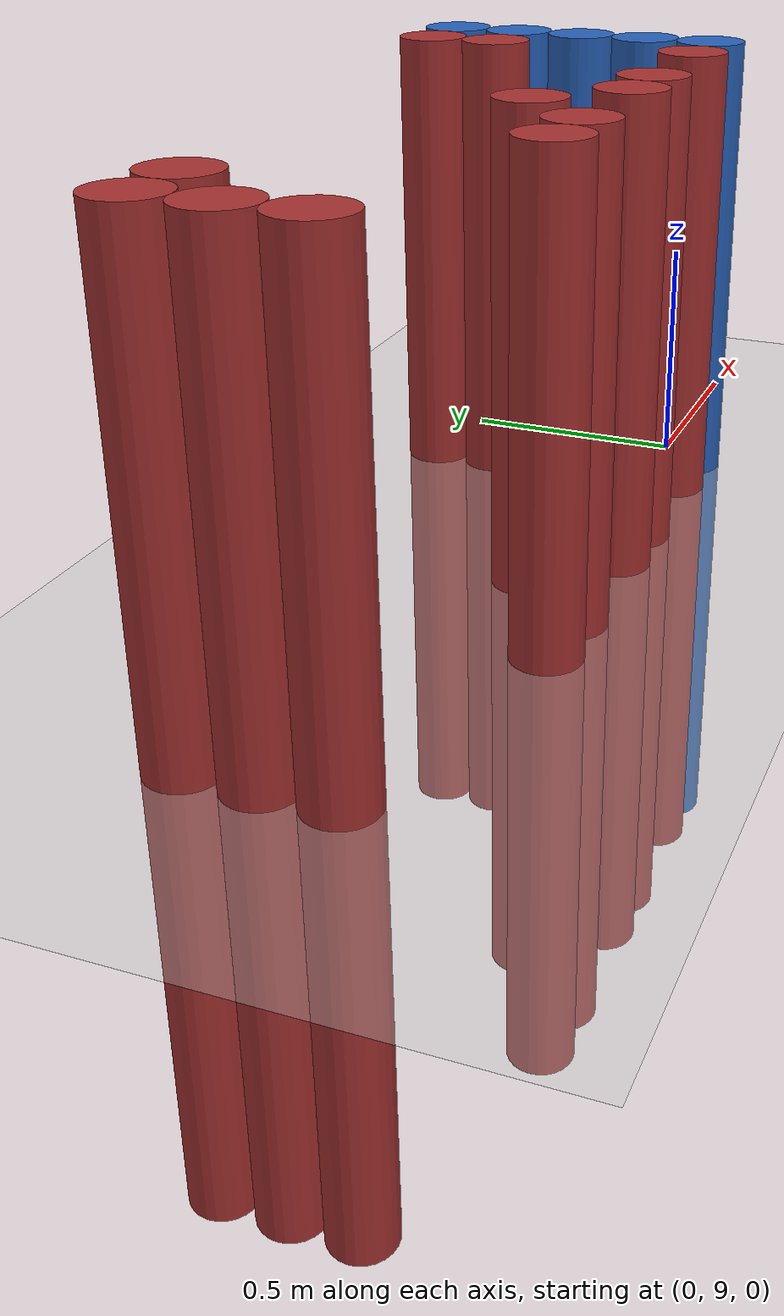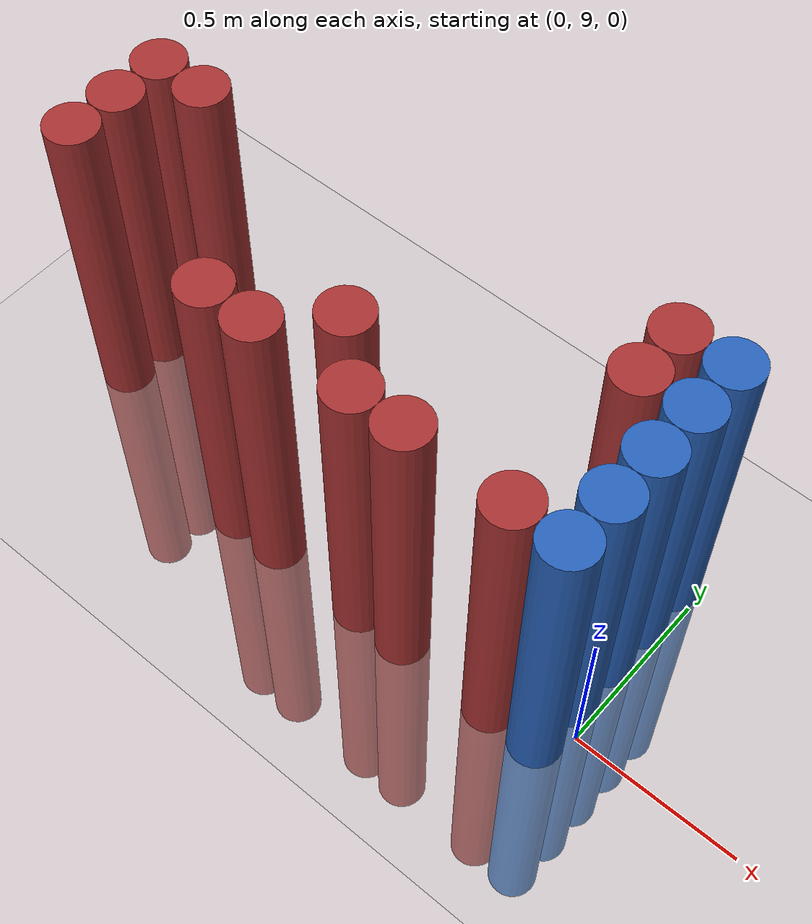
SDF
<sdf version="1.6">
 <world name="default">
  <model name="ground_plane">
   <static>1</static>
   <link name="link">
    <collision name="collision">
     <geometry><plane><normal>0 0 1</normal><size>100 100</size></plane></geometry>
     <surface><friction><ode><mu>100</mu><mu2>50</mu2></ode></friction></surface>
    </collision>
    <visual name="visual">
     <cast_shadows>0</cast_shadows>
     <geometry><plane><normal>0 0 1</normal><size>100 100</size></plane></geometry>
     <material>
      <script><uri>file://media/materials/scripts/gazebo.material</uri><name>Gazebo/Grey</name></script>
     </material>
    </visual>
   </link>
  </model>
  <model name="unit_cylinder_185">
   <static>1</static>
   <pose>-1.725000 9.075000 0.000000 0.000000 0.000000 0.000000</pose>
   <link name="link">
    <inertial>
     <mass>1</mass>
     <inertia><ixx>0.145833</ixx><ixy>0</ixy><ixz>0</ixz><iyy>0.145833</iyy><iyz>0</iyz><izz>0.125</izz></inertia>
    </inertial>
    <collision name="collision">
     <geometry><cylinder><radius>0.075000</radius><length>2</length></cylinder></geometry>
    </collision>
    <visual name="visual">
     <geometry><cylinder><radius>0.075000</radius><length>2</length></cylinder></geometry>
     <material>
      <ambient>0.648000 0.192000 0.192000 1</ambient>
      <diffuse>0.648000 0.192000 0.192000 1</diffuse>
     </material>
     <material>
      <script><name>Gazebo/Grey</name><uri>file://media/materials/scripts/gazebo.material</uri></script>
     </material>
    </visual>
   </link>
  </model>
  <model name="unit_cylinder_186">
   <static>1</static>
   <pose>-1.725000 9.225000 0.000000 0.000000 0.000000 0.000000</pose>
   <link name="link">
    <inertial>
     <mass>1</mass>
     <inertia><ixx>0.145833</ixx><ixy>0</ixy><ixz>0</ixz><iyy>0.145833</iyy><iyz>0</iyz><izz>0.125</izz></inertia>
    </inertial>
    <collision name="collision">
     <geometry><cylinder><radius>0.075000</radius><length>2</length></cylinder></geometry>
    </collision>
    <visual name="visual">
     <geometry><cylinder><radius>0.075000</radius><length>2</length></cylinder></geometry>
     <material>
      <ambient>0.648000 0.192000 0.192000 1</ambient>
      <diffuse>0.648000 0.192000 0.192000 1</diffuse>
     </material>
     <material>
      <script><name>Gazebo/Grey</name><uri>file://media/materials/scripts/gazebo.material</uri></script>
     </material>
    </visual>
   </link>
  </model>
  <model name="unit_cylinder_187">
   <static>1</static>
   <pose>-1.725000 9.375000 0.000000 0.000000 0.000000 0.000000</pose>
   <link name="link">
    <inertial>
     <mass>1</mass>
     <inertia><ixx>0.145833</ixx><ixy>0</ixy><ixz>0</ixz><iyy>0.145833</iyy><iyz>0</iyz><izz>0.125</izz></inertia>
    </inertial>
    <collision name="collision">
     <geometry><cylinder><radius>0.075000</radius><length>2</length></cylinder></geometry>
    </collision>
    <visual name="visual">
     <geometry><cylinder><radius>0.075000</radius><length>2</length></cylinder></geometry>
     <material>
      <ambient>0.648000 0.192000 0.192000 1</ambient>
      <diffuse>0.648000 0.192000 0.192000 1</diffuse>
     </material>
     <material>
      <script><name>Gazebo/Grey</name><uri>file://media/materials/scripts/gazebo.material</uri></script>
     </material>
    </visual>
   </link>
  </model>
  <model name="unit_cylinder_189">
   <static>1</static>
   <pose>-1.575000 9.375000 0.000000 0.000000 0.000000 0.000000</pose>
   <link name="link">
    <inertial>
     <mass>1</mass>
     <inertia><ixx>0.145833</ixx><ixy>0</ixy><ixz>0</ixz><iyy>0.145833</iyy><iyz>0</iyz><izz>0.125</izz></inertia>
    </inertial>
    <collision name="collision">
     <geometry><cylinder><radius>0.075000</radius><length>2</length></cylinder></geometry>
    </collision>
    <visual name="visual">
     <geometry><cylinder><radius>0.075000</radius><length>2</length></cylinder></geometry>
     <material>
      <ambient>0.648000 0.192000 0.192000 1</ambient>
      <diffuse>0.648000 0.192000 0.192000 1</diffuse>
     </material>
     <material>
      <script><name>Gazebo/Grey</name><uri>file://media/materials/scripts/gazebo.material</uri></script>
     </material>
    </visual>
   </link>
  </model>
  <model name="unit_cylinder_199">
   <static>1</static>
   <pose>-1.125000 8.925000 0.000000 0.000000 0.000000 0.000000</pose>
   <link name="link">
    <inertial>
     <mass>1</mass>
     <inertia><ixx>0.145833</ixx><ixy>0</ixy><ixz>0</ixz><iyy>0.145833</iyy><iyz>0</iyz><izz>0.125</izz></inertia>
    </inertial>
    <collision name="collision">
     <geometry><cylinder><radius>0.075000</radius><length>2</length></cylinder></geometry>
    </collision>
    <visual name="visual">
     <geometry><cylinder><radius>0.075000</radius><length>2</length></cylinder></geometry>
     <material>
      <ambient>0.648000 0.192000 0.192000 1</ambient>
      <diffuse>0.648000 0.192000 0.192000 1</diffuse>
     </material>
     <material>
      <script><name>Gazebo/Grey</name><uri>file://media/materials/scripts/gazebo.material</uri></script>
     </material>
    </visual>
   </link>
  </model>
  <model name="unit_cylinder_200">
   <static>1</static>
   <pose>-0.975000 8.925000 0.000000 0.000000 0.000000 0.000000</pose>
   <link name="link">
    <inertial>
     <mass>1</mass>
     <inertia><ixx>0.145833</ixx><ixy>0</ixy><ixz>0</ixz><iyy>0.145833</iyy><iyz>0</iyz><izz>0.125</izz></inertia>
    </inertial>
    <collision name="collision">
     <geometry><cylinder><radius>0.075000</radius><length>2</length></cylinder></geometry>
    </collision>
    <visual name="visual">
     <geometry><cylinder><radius>0.075000</radius><length>2</length></cylinder></geometry>
     <material>
      <ambient>0.648000 0.192000 0.192000 1</ambient>
      <diffuse>0.648000 0.192000 0.192000 1</diffuse>
     </material>
     <material>
      <script><name>Gazebo/Grey</name><uri>file://media/materials/scripts/gazebo.material</uri></script>
     </material>
    </visual>
   </link>
  </model>
  <model name="unit_cylinder_201">
   <static>1</static>
   <pose>-0.825000 9.075000 0.000000 0.000000 0.000000 0.000000</pose>
   <link name="link">
    <inertial>
     <mass>1</mass>
     <inertia><ixx>0.145833</ixx><ixy>0</ixy><ixz>0</ixz><iyy>0.145833</iyy><iyz>0</iyz><izz>0.125</izz></inertia>
    </inertial>
    <collision name="collision">
     <geometry><cylinder><radius>0.075000</radius><length>2</length></cylinder></geometry>
    </collision>
    <visual name="visual">
     <geometry><cylinder><radius>0.075000</radius><length>2</length></cylinder></geometry>
     <material>
      <ambient>0.648000 0.192000 0.192000 1</ambient>
      <diffuse>0.648000 0.192000 0.192000 1</diffuse>
     </material>
     <material>
      <script><name>Gazebo/Grey</name><uri>file://media/materials/scripts/gazebo.material</uri></script>
     </material>
    </visual>
   </link>
  </model>
  <model name="unit_cylinder_205">
   <static>1</static>
   <pose>-0.675000 8.925000 0.000000 0.000000 0.000000 0.000000</pose>
   <link name="link">
    <inertial>
     <mass>1</mass>
     <inertia><ixx>0.145833</ixx><ixy>0</ixy><ixz>0</ixz><iyy>0.145833</iyy><iyz>0</iyz><izz>0.125</izz></inertia>
    </inertial>
    <collision name="collision">
     <geometry><cylinder><radius>0.075000</radius><length>2</length></cylinder></geometry>
    </collision>
    <visual name="visual">
     <geometry><cylinder><radius>0.075000</radius><length>2</length></cylinder></geometry>
     <material>
      <ambient>0.648000 0.192000 0.192000 1</ambient>
      <diffuse>0.648000 0.192000 0.192000 1</diffuse>
     </material>
     <material>
      <script><name>Gazebo/Grey</name><uri>file://media/materials/scripts/gazebo.material</uri></script>
     </material>
    </visual>
   </link>
  </model>
  <model name="unit_cylinder_211">
   <static>1</static>
   <pose>-0.525000 8.925000 0.000000 0.000000 0.000000 0.000000</pose>
   <link name="link">
    <inertial>
     <mass>1</mass>
     <inertia><ixx>0.145833</ixx><ixy>0</ixy><ixz>0</ixz><iyy>0.145833</iyy><iyz>0</iyz><izz>0.125</izz></inertia>
    </inertial>
    <collision name="collision">
     <geometry><cylinder><radius>0.075000</radius><length>2</length></cylinder></geometry>
    </collision>
    <visual name="visual">
     <geometry><cylinder><radius>0.075000</radius><length>2</length></cylinder></geometry>
     <material>
      <ambient>0.648000 0.192000 0.192000 1</ambient>
      <diffuse>0.648000 0.192000 0.192000 1</diffuse>
     </material>
     <material>
      <script><name>Gazebo/Grey</name><uri>file://media/materials/scripts/gazebo.material</uri></script>
     </material>
    </visual>
   </link>
  </model>
  <model name="unit_cylinder_237">
   <static>1</static>
   <pose>-0.225000 8.925000 0.000000 0.000000 0.000000 0.000000</pose>
   <link name="link">
    <inertial>
     <mass>1</mass>
     <inertia><ixx>0.145833</ixx><ixy>0</ixy><ixz>0</ixz><iyy>0.145833</iyy><iyz>0</iyz><izz>0.125</izz></inertia>
    </inertial>
    <collision name="collision">
     <geometry><cylinder><radius>0.075000</radius><length>2</length></cylinder></geometry>
    </collision>
    <visual name="visual">
     <geometry><cylinder><radius>0.075000</radius><length>2</length></cylinder></geometry>
     <material>
      <ambient>0.648000 0.192000 0.192000 1</ambient>
      <diffuse>0.648000 0.192000 0.192000 1</diffuse>
     </material>
     <material>
      <script><name>Gazebo/Grey</name><uri>file://media/materials/scripts/gazebo.material</uri></script>
     </material>
    </visual>
   </link>
  </model>
  <model name="unit_cylinder_238">
   <static>1</static>
   <pose>-0.225000 9.375000 0.000000 0.000000 0.000000 0.000000</pose>
   <link name="link">
    <inertial>
     <mass>1</mass>
     <inertia><ixx>0.145833</ixx><ixy>0</ixy><ixz>0</ixz><iyy>0.145833</iyy><iyz>0</iyz><izz>0.125</izz></inertia>
    </inertial>
    <collision name="collision">
     <geometry><cylinder><radius>0.075000</radius><length>2</length></cylinder></geometry>
    </collision>
    <visual name="visual">
     <geometry><cylinder><radius>0.075000</radius><length>2</length></cylinder></geometry>
     <material>
      <ambient>0.648000 0.192000 0.192000 1</ambient>
      <diffuse>0.648000 0.192000 0.192000 1</diffuse>
     </material>
     <material>
      <script><name>Gazebo/Grey</name><uri>file://media/materials/scripts/gazebo.material</uri></script>
     </material>
    </visual>
   </link>
  </model>
  <model name="unit_cylinder_239">
   <static>1</static>
   <pose>-0.225000 9.525000 0.000000 0.000000 0.000000 0.000000</pose>
   <link name="link">
    <inertial>
     <mass>1</mass>
     <inertia><ixx>0.145833</ixx><ixy>0</ixy><ixz>0</ixz><iyy>0.145833</iyy><iyz>0</iyz><izz>0.125</izz></inertia>
    </inertial>
    <collision name="collision">
     <geometry><cylinder><radius>0.075000</radius><length>2</length></cylinder></geometry>
    </collision>
    <visual name="visual">
     <geometry><cylinder><radius>0.075000</radius><length>2</length></cylinder></geometry>
     <material>
      <ambient>0.648000 0.192000 0.192000 1</ambient>
      <diffuse>0.648000 0.192000 0.192000 1</diffuse>
     </material>
     <material>
      <script><name>Gazebo/Grey</name><uri>file://media/materials/scripts/gazebo.material</uri></script>
     </material>
    </visual>
   </link>
  </model>
  <model name="unit_cylinder_265">
   <static>1</static>
   <pose>-0.075000 8.925000 0.000000 0.000000 0.000000 0.000000</pose>
   <link name="link">
    <inertial>
     <mass>1</mass>
     <inertia><ixx>0.145833</ixx><ixy>0</ixy><ixz>0</ixz><iyy>0.145833</iyy><iyz>0</iyz><izz>0.125</izz></inertia>
    </inertial>
    <collision name="collision">
     <geometry><cylinder><radius>0.075000</radius><length>2</length></cylinder></geometry>
    </collision>
    <visual name="visual">
     <geometry><cylinder><radius>0.075000</radius><length>2</length></cylinder></geometry>
     <material>
      <ambient>0.152000 0.379000 0.720000 1</ambient>
      <diffuse>0.152000 0.379000 0.720000 1</diffuse>
     </material>
     <material>
      <script><name>Gazebo/Grey</name><uri>file://media/materials/scripts/gazebo.material</uri></script>
     </material>
    </visual>
   </link>
  </model>
  <model name="unit_cylinder_266">
   <static>1</static>
   <pose>-0.075000 9.075000 0.000000 0.000000 0.000000 0.000000</pose>
   <link name="link">
    <inertial>
     <mass>1</mass>
     <inertia><ixx>0.145833</ixx><ixy>0</ixy><ixz>0</ixz><iyy>0.145833</iyy><iyz>0</iyz><izz>0.125</izz></inertia>
    </inertial>
    <collision name="collision">
     <geometry><cylinder><radius>0.075000</radius><length>2</length></cylinder></geometry>
    </collision>
    <visual name="visual">
     <geometry><cylinder><radius>0.075000</radius><length>2</length></cylinder></geometry>
     <material>
      <ambient>0.152000 0.379000 0.720000 1</ambient>
      <diffuse>0.152000 0.379000 0.720000 1</diffuse>
     </material>
     <material>
      <script><name>Gazebo/Grey</name><uri>file://media/materials/scripts/gazebo.material</uri></script>
     </material>
    </visual>
   </link>
  </model>
  <model name="unit_cylinder_267">
   <static>1</static>
   <pose>-0.075000 9.225000 0.000000 0.000000 0.000000 0.000000</pose>
   <link name="link">
    <inertial>
     <mass>1</mass>
     <inertia><ixx>0.145833</ixx><ixy>0</ixy><ixz>0</ixz><iyy>0.145833</iyy><iyz>0</iyz><izz>0.125</izz></inertia>
    </inertial>
    <collision name="collision">
     <geometry><cylinder><radius>0.075000</radius><length>2</length></cylinder></geometry>
    </collision>
    <visual name="visual">
     <geometry><cylinder><radius>0.075000</radius><length>2</length></cylinder></geometry>
     <material>
      <ambient>0.152000 0.379000 0.720000 1</ambient>
      <diffuse>0.152000 0.379000 0.720000 1</diffuse>
     </material>
     <material>
      <script><name>Gazebo/Grey</name><uri>file://media/materials/scripts/gazebo.material</uri></script>
     </material>
    </visual>
   </link>
  </model>
  <model name="unit_cylinder_268">
   <static>1</static>
   <pose>-0.075000 9.375000 0.000000 0.000000 0.000000 0.000000</pose>
   <link name="link">
    <inertial>
     <mass>1</mass>
     <inertia><ixx>0.145833</ixx><ixy>0</ixy><ixz>0</ixz><iyy>0.145833</iyy><iyz>0</iyz><izz>0.125</izz></inertia>
    </inertial>
    <collision name="collision">
     <geometry><cylinder><radius>0.075000</radius><length>2</length></cylinder></geometry>
    </collision>
    <visual name="visual">
     <geometry><cylinder><radius>0.075000</radius><length>2</length></cylinder></geometry>
     <material>
      <ambient>0.152000 0.379000 0.720000 1</ambient>
      <diffuse>0.152000 0.379000 0.720000 1</diffuse>
     </material>
     <material>
      <script><name>Gazebo/Grey</name><uri>file://media/materials/scripts/gazebo.material</uri></script>
     </material>
    </visual>
   </link>
  </model>
  <model name="unit_cylinder_269">
   <static>1</static>
   <pose>-0.075000 9.525000 0.000000 0.000000 0.000000 0.000000</pose>
   <link name="link">
    <inertial>
     <mass>1</mass>
     <inertia><ixx>0.145833</ixx><ixy>0</ixy><ixz>0</ixz><iyy>0.145833</iyy><iyz>0</iyz><izz>0.125</izz></inertia>
    </inertial>
    <collision name="collision">
     <geometry><cylinder><radius>0.075000</radius><length>2</length></cylinder></geometry>
    </collision>
    <visual name="visual">
     <geometry><cylinder><radius>0.075000</radius><length>2</length></cylinder></geometry>
     <material>
      <ambient>0.152000 0.379000 0.720000 1</ambient>
      <diffuse>0.152000 0.379000 0.720000 1</diffuse>
     </material>
     <material>
      <script><name>Gazebo/Grey</name><uri>file://media/materials/scripts/gazebo.material</uri></script>
     </material>
    </visual>
   </link>
  </model>
 </world>
</sdf>
